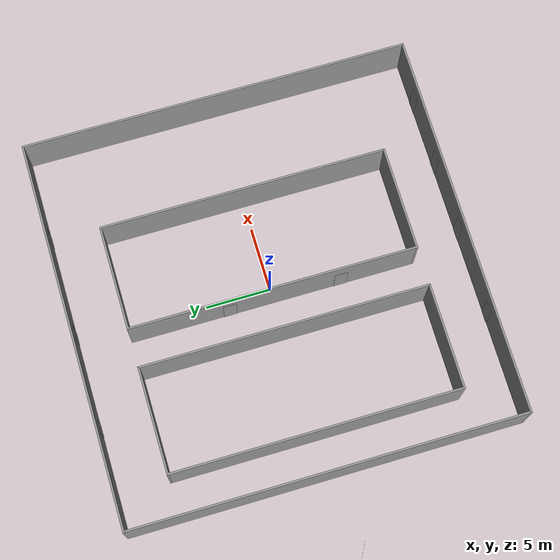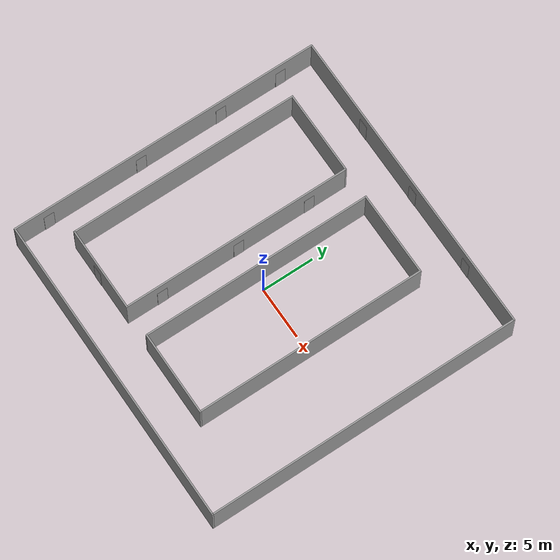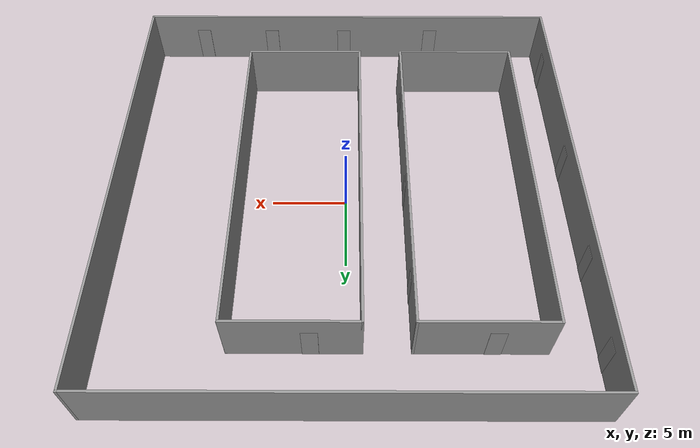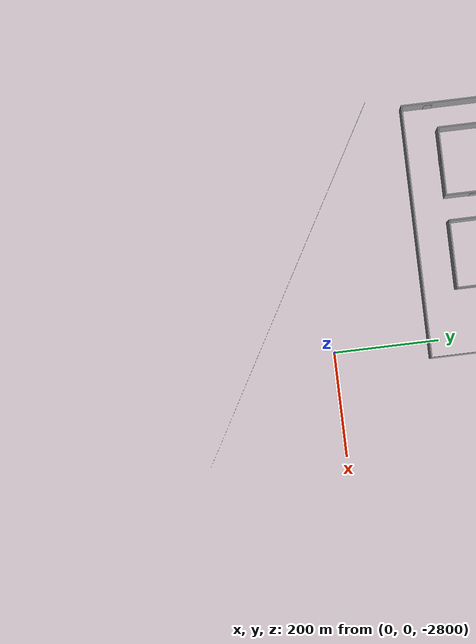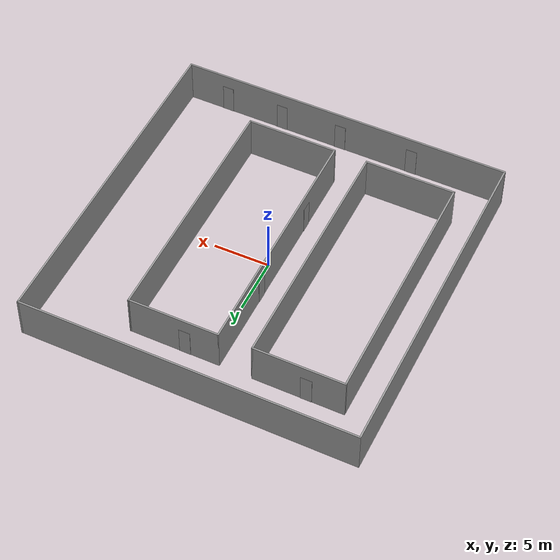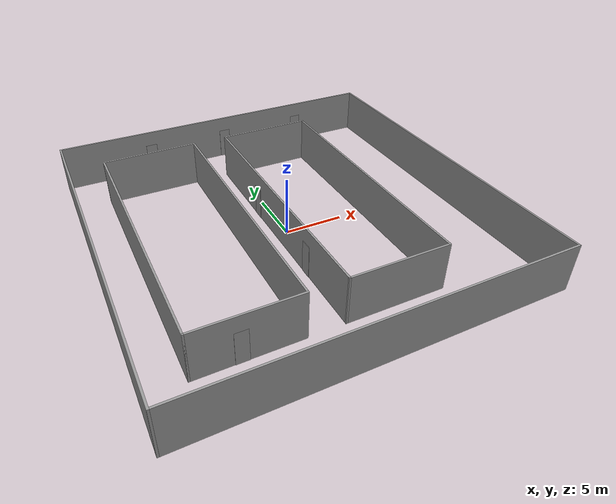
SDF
<sdf version="1.7">
 <world name="default">
  <model name="ground_plane">
   <static>1</static>
   <link name="link">
    <collision name="collision">
     <geometry><plane><normal>0 0 1</normal><size>30 30</size></plane></geometry>
     <surface>
      <contact><collide_bitmask>65535</collide_bitmask></contact>
      <friction><ode><mu>100</mu><mu2>50</mu2></ode></friction>
     </surface>
    </collision>
    <visual name="visual">
     <cast_shadows>0</cast_shadows>
     <geometry><plane><normal>0 0 1</normal><size>30 30</size></plane></geometry>
     <material>
      <script><uri>file://media/materials/scripts/gazebo.material</uri><name>Gazebo/White</name></script>
      <ambient>1 1 1 1</ambient>
      <diffuse>1 1 1 1</diffuse>
      <emissive>1 1 1 1</emissive>
     </material>
    </visual>
   </link>
  </model>
  <gravity>0 0 -9.8</gravity>
  <magnetic_field>6e-06 2.3e-05 -4.2e-05</magnetic_field>
  <atmosphere type="adiabatic"/>
  <physics type="ode">
   <max_step_size>0.001</max_step_size>
   <real_time_factor>1</real_time_factor>
   <real_time_update_rate>1000</real_time_update_rate>
  </physics>
  <scene>
   <ambient>0.6 0.6 0.6 1</ambient>
   <background>0.7 0.7 0.7 1</background>
   <shadows>0</shadows>
   <grid>0</grid>
  </scene>
  <spherical_coordinates>
   <surface_model>EARTH_WGS84</surface_model>
   <latitude_deg>0</latitude_deg>
   <longitude_deg>0</longitude_deg>
   <elevation>0</elevation>
   <heading_deg>0</heading_deg>
  </spherical_coordinates>
  <model name="hospital_wall">
   <link name="Wall_10">
    <collision name="Wall_10_Collision">
     <geometry><box><size>30.15 0.15 4</size></box></geometry>
     <pose>0 0 2 0 -0 0</pose>
    </collision>
    <visual name="Wall_10_Visual">
     <pose>0 0 2 0 -0 0</pose>
     <geometry><box><size>30.15 0.15 4</size></box></geometry>
     <material>
      <script><uri>file://media/materials/scripts/gazebo.material</uri><name>Gazebo/Grey</name></script>
      <ambient>1 1 1 1</ambient>
     </material>
     <meta><layer>0</layer></meta>
    </visual>
    <pose>-14.9625 0 0 0 -0 1.5708</pose>
   </link>
   <link name="Wall_12">
    <collision name="Wall_12_Collision">
     <geometry><box><size>22.15 0.15 4</size></box></geometry>
     <pose>0 0 2 0 -0 0</pose>
    </collision>
    <visual name="Wall_12_Visual">
     <pose>0 0 2 0 -0 0</pose>
     <geometry><box><size>22.15 0.15 4</size></box></geometry>
     <material>
      <script><uri>file://media/materials/scripts/gazebo.material</uri><name>Gazebo/Grey</name></script>
      <ambient>1 1 1 1</ambient>
     </material>
     <meta><layer>0</layer></meta>
    </visual>
    <pose>7.0375 0 0 0 -0 -1.5708</pose>
   </link>
   <link name="Wall_13">
    <collision name="Wall_13_Collision">
     <geometry><box><size>8.15 0.15 4</size></box></geometry>
     <pose>0 0 2 0 -0 0</pose>
    </collision>
    <visual name="Wall_13_Visual">
     <pose>0 0 2 0 -0 0</pose>
     <geometry><box><size>8.15 0.15 4</size></box></geometry>
     <material>
      <script><uri>file://media/materials/scripts/gazebo.material</uri><name>Gazebo/Grey</name></script>
      <ambient>1 1 1 1</ambient>
     </material>
     <meta><layer>0</layer></meta>
    </visual>
    <pose>3.0375 -11 0 0 -0 3.14159</pose>
   </link>
   <link name="Wall_14">
    <collision name="Wall_14_Collision">
     <geometry><box><size>22.15 0.15 4</size></box></geometry>
     <pose>0 0 2 0 -0 0</pose>
    </collision>
    <visual name="Wall_14_Visual">
     <pose>0 0 2 0 -0 0</pose>
     <geometry><box><size>22.15 0.15 4</size></box></geometry>
     <material>
      <script><uri>file://media/materials/scripts/gazebo.material</uri><name>Gazebo/Grey</name></script>
      <ambient>1 1 1 1</ambient>
     </material>
     <meta><layer>0</layer></meta>
    </visual>
    <pose>-0.962499 0 0 0 -0 1.5708</pose>
   </link>
   <link name="Wall_15">
    <collision name="Wall_15_Collision">
     <geometry><box><size>8.15 0.15 4</size></box></geometry>
     <pose>0 0 2 0 -0 0</pose>
    </collision>
    <visual name="Wall_15_Visual">
     <pose>0 0 2 0 -0 0</pose>
     <geometry><box><size>8.15 0.15 4</size></box></geometry>
     <material>
      <script><uri>file://media/materials/scripts/gazebo.material</uri><name>Gazebo/Grey</name></script>
      <ambient>1 1 1 1</ambient>
     </material>
     <meta><layer>0</layer></meta>
    </visual>
    <pose>3.0375 11 0 0 -0 0</pose>
   </link>
   <link name="Wall_17">
    <collision name="Wall_17_Collision">
     <geometry><box><size>22.15 0.15 4</size></box></geometry>
     <pose>0 0 2 0 -0 0</pose>
    </collision>
    <visual name="Wall_17_Visual">
     <pose>0 0 2 0 -0 0</pose>
     <geometry><box><size>22.15 0.15 4</size></box></geometry>
     <material>
      <script><uri>file://media/materials/scripts/gazebo.material</uri><name>Gazebo/Grey</name></script>
      <ambient>1 1 1 1</ambient>
     </material>
     <meta><layer>0</layer></meta>
    </visual>
    <pose>-11.9625 0 0 0 -0 -1.5708</pose>
   </link>
   <link name="Wall_18">
    <collision name="Wall_18_Collision">
     <geometry><box><size>8.15 0.15 4</size></box></geometry>
     <pose>0 0 2 0 -0 0</pose>
    </collision>
    <visual name="Wall_18_Visual">
     <pose>0 0 2 0 -0 0</pose>
     <geometry><box><size>8.15 0.15 4</size></box></geometry>
     <material>
      <script><uri>file://media/materials/scripts/gazebo.material</uri><name>Gazebo/Grey</name></script>
      <ambient>1 1 1 1</ambient>
     </material>
     <meta><layer>0</layer></meta>
    </visual>
    <pose>-7.9625 -11 0 0 -0 0</pose>
   </link>
   <link name="Wall_19">
    <collision name="Wall_19_Collision">
     <geometry><box><size>22.15 0.15 4</size></box></geometry>
     <pose>0 0 2 0 -0 0</pose>
    </collision>
    <visual name="Wall_19_Visual">
     <pose>0 0 2 0 -0 0</pose>
     <geometry><box><size>22.15 0.15 4</size></box></geometry>
     <material>
      <script><uri>file://media/materials/scripts/gazebo.material</uri><name>Gazebo/Grey</name></script>
      <ambient>1 1 1 1</ambient>
     </material>
     <meta><layer>0</layer></meta>
    </visual>
    <pose>-3.9625 0 0 0 -0 1.5708</pose>
   </link>
   <link name="Wall_2">
    <collision name="Wall_2_Collision">
     <geometry><box><size>30 0.15 4</size></box></geometry>
     <pose>0 0 2 0 -0 0</pose>
    </collision>
    <visual name="Wall_2_Visual">
     <pose>0 0 2 0 -0 0</pose>
     <geometry><box><size>30 0.15 4</size></box></geometry>
     <material>
      <script><uri>file://media/materials/scripts/gazebo.material</uri><name>Gazebo/Grey</name></script>
      <ambient>1 1 1 1</ambient>
     </material>
     <meta><layer>0</layer></meta>
    </visual>
    <pose>-0.037498 15 0 0 -0 3.14159</pose>
   </link>
   <link name="Wall_20">
    <collision name="Wall_20_Collision">
     <geometry><box><size>8.15 0.15 4</size></box></geometry>
     <pose>0 0 2 0 -0 0</pose>
    </collision>
    <visual name="Wall_20_Visual">
     <pose>0 0 2 0 -0 0</pose>
     <geometry><box><size>8.15 0.15 4</size></box></geometry>
     <material>
      <script><uri>file://media/materials/scripts/gazebo.material</uri><name>Gazebo/Grey</name></script>
      <ambient>1 1 1 1</ambient>
     </material>
     <meta><layer>0</layer></meta>
    </visual>
    <pose>-7.9625 11 0 0 -0 3.14159</pose>
   </link>
   <link name="Wall_8">
    <collision name="Wall_8_Collision">
     <geometry><box><size>30.15 0.15 4</size></box></geometry>
     <pose>0 0 2 0 -0 0</pose>
    </collision>
    <visual name="Wall_8_Visual">
     <pose>0 0 2 0 -0 0</pose>
     <geometry><box><size>30.15 0.15 4</size></box></geometry>
     <material>
      <script><uri>file://media/materials/scripts/gazebo.material</uri><name>Gazebo/Grey</name></script>
      <ambient>1 1 1 1</ambient>
     </material>
     <meta><layer>0</layer></meta>
    </visual>
    <pose>14.8875 0 0 0 -0 -1.5708</pose>
   </link>
   <link name="Wall_9">
    <collision name="Wall_9_Collision">
     <geometry><box><size>30 0.15 4</size></box></geometry>
     <pose>0 0 2 0 -0 0</pose>
    </collision>
    <visual name="Wall_9_Visual">
     <pose>0 0 2 0 -0 0</pose>
     <geometry><box><size>30 0.15 4</size></box></geometry>
     <material>
      <script><uri>file://media/materials/scripts/gazebo.material</uri><name>Gazebo/Grey</name></script>
      <ambient>1 1 1 1</ambient>
     </material>
     <meta><layer>0</layer></meta>
    </visual>
    <pose>-0.037498 -15 0 0 -0 3.14159</pose>
   </link>
   <static>1</static>
  </model>
  <model name="unit_box">
   <pose>-2.42343 -116.201 -2021.87 1.14266 1.29147 -0.652797</pose>
   <link name="link">
    <inertial>
     <mass>1</mass>
     <inertia>
      <ixx>0.166667</ixx>
      <ixy>0</ixy>
      <ixz>0</ixz>
      <iyy>0.166667</iyy>
      <iyz>0</iyz>
      <izz>0.166667</izz>
     </inertia>
    </inertial>
    <collision name="collision">
     <geometry><box><size>1816.64 0.0150161 0.185075</size></box></geometry>
    </collision>
    <visual name="visual">
     <geometry><box><size>1816.64 0.0150161 0.185075</size></box></geometry>
     <material>
      <script><name>Gazebo/Grey</name><uri>file://media/materials/scripts/gazebo.material</uri></script>
     </material>
    </visual>
   </link>
  </model>
  <model name="unit_box_0_clone">
   <pose>-8.47209 -11.0876 1.36135 -4e-06 2e-06 -1e-06</pose>
   <link name="link">
    <inertial>
     <mass>1</mass>
     <inertia>
      <ixx>0.166667</ixx>
      <ixy>0</ixy>
      <ixz>0</ixz>
      <iyy>0.166667</iyy>
      <iyz>0</iyz>
      <izz>0.166667</izz>
     </inertia>
    </inertial>
    <collision name="collision"><geometry><box><size>1 0.025101 2.7227</size></box></geometry></collision>
    <visual name="visual">
     <geometry><box><size>1 0.025101 2.7227</size></box></geometry>
     <material>
      <script><name>Gazebo/Grey</name><uri>file://media/materials/scripts/gazebo.material</uri></script>
     </material>
    </visual>
   </link>
  </model>
  <model name="unit_box_0_clone_0">
   <pose>11.1775 -14.9125 1.36135 -0 -1e-06 -3e-06</pose>
   <link name="link">
    <inertial>
     <mass>1</mass>
     <inertia>
      <ixx>0.166667</ixx>
      <ixy>0</ixy>
      <ixz>0</ixz>
      <iyy>0.166667</iyy>
      <iyz>0</iyz>
      <izz>0.166667</izz>
     </inertia>
    </inertial>
    <collision name="collision"><geometry><box><size>1 0.025101 2.7227</size></box></geometry></collision>
    <visual name="visual">
     <geometry><box><size>1 0.025101 2.7227</size></box></geometry>
     <material>
      <script><name>Gazebo/Grey</name><uri>file://media/materials/scripts/gazebo.material</uri></script>
     </material>
    </visual>
   </link>
  </model>
  <model name="unit_box_0_clone_1">
   <pose>5.85953 -14.9125 1.36135 0 1e-06 -3e-06</pose>
   <link name="link">
    <inertial>
     <mass>1</mass>
     <inertia>
      <ixx>0.166667</ixx>
      <ixy>0</ixy>
      <ixz>0</ixz>
      <iyy>0.166667</iyy>
      <iyz>0</iyz>
      <izz>0.166667</izz>
     </inertia>
    </inertial>
    <collision name="collision"><geometry><box><size>1 0.025101 2.7227</size></box></geometry></collision>
    <visual name="visual">
     <geometry><box><size>1 0.025101 2.7227</size></box></geometry>
     <material>
      <script><name>Gazebo/Grey</name><uri>file://media/materials/scripts/gazebo.material</uri></script>
     </material>
    </visual>
   </link>
  </model>
  <model name="unit_box_0_clone_2">
   <pose>0.225423 -14.9124 1.36135 8e-06 1e-06 -3e-06</pose>
   <link name="link">
    <inertial>
     <mass>1</mass>
     <inertia>
      <ixx>0.166667</ixx>
      <ixy>0</ixy>
      <ixz>0</ixz>
      <iyy>0.166667</iyy>
      <iyz>0</iyz>
      <izz>0.166667</izz>
     </inertia>
    </inertial>
    <collision name="collision"><geometry><box><size>1 0.025101 2.7227</size></box></geometry></collision>
    <visual name="visual">
     <geometry><box><size>1 0.025101 2.7227</size></box></geometry>
     <material>
      <script><name>Gazebo/Grey</name><uri>file://media/materials/scripts/gazebo.material</uri></script>
     </material>
    </visual>
   </link>
  </model>
  <model name="unit_box_0_clone_3">
   <pose>-6.52828 -14.9124 1.36135 -2e-06 1e-06 -9e-06</pose>
   <link name="link">
    <inertial>
     <mass>1</mass>
     <inertia>
      <ixx>0.166667</ixx>
      <ixy>0</ixy>
      <ixz>0</ixz>
      <iyy>0.166667</iyy>
      <iyz>0</iyz>
      <izz>0.166667</izz>
     </inertia>
    </inertial>
    <collision name="collision"><geometry><box><size>1 0.025101 2.7227</size></box></geometry></collision>
    <visual name="visual">
     <geometry><box><size>1 0.025101 2.7227</size></box></geometry>
     <material>
      <script><name>Gazebo/Grey</name><uri>file://media/materials/scripts/gazebo.material</uri></script>
     </material>
    </visual>
   </link>
  </model>
  <model name="unit_box_0_clone_4">
   <pose>2.05561 11.0876 1.36135 1e-06 -1e-06 -1e-06</pose>
   <link name="link">
    <inertial>
     <mass>1</mass>
     <inertia>
      <ixx>0.166667</ixx>
      <ixy>0</ixy>
      <ixz>0</ixz>
      <iyy>0.166667</iyy>
      <iyz>0</iyz>
      <izz>0.166667</izz>
     </inertia>
    </inertial>
    <collision name="collision"><geometry><box><size>1 0.025101 2.7227</size></box></geometry></collision>
    <visual name="visual">
     <geometry><box><size>1 0.025101 2.7227</size></box></geometry>
     <material>
      <script><name>Gazebo/Grey</name><uri>file://media/materials/scripts/gazebo.material</uri></script>
     </material>
    </visual>
   </link>
  </model>
  <model name="unit_box_0_clone_5">
   <pose>-8.66704 11.0876 1.36135 -4e-06 -1e-06 -3e-06</pose>
   <link name="link">
    <inertial>
     <mass>1</mass>
     <inertia>
      <ixx>0.166667</ixx>
      <ixy>0</ixy>
      <ixz>0</ixz>
      <iyy>0.166667</iyy>
      <iyz>0</iyz>
      <izz>0.166667</izz>
     </inertia>
    </inertial>
    <collision name="collision"><geometry><box><size>1 0.025101 2.7227</size></box></geometry></collision>
    <visual name="visual">
     <geometry><box><size>1 0.025101 2.7227</size></box></geometry>
     <material>
      <script><name>Gazebo/Grey</name><uri>file://media/materials/scripts/gazebo.material</uri></script>
     </material>
    </visual>
   </link>
  </model>
  <model name="unit_box_0_clone_6">
   <pose>8.16667 14.9124 1.36135 7e-06 -1e-06 -4e-06</pose>
   <link name="link">
    <inertial>
     <mass>1</mass>
     <inertia>
      <ixx>0.166667</ixx>
      <ixy>0</ixy>
      <ixz>0</ixz>
      <iyy>0.166667</iyy>
      <iyz>0</iyz>
      <izz>0.166667</izz>
     </inertia>
    </inertial>
    <collision name="collision"><geometry><box><size>1 0.025101 2.7227</size></box></geometry></collision>
    <visual name="visual">
     <geometry><box><size>1 0.025101 2.7227</size></box></geometry>
     <material>
      <script><name>Gazebo/Grey</name><uri>file://media/materials/scripts/gazebo.material</uri></script>
     </material>
    </visual>
   </link>
  </model>
  <model name="unit_box_0_clone_7">
   <pose>0.367251 14.9124 1.36135 3e-06 1e-06 -4e-06</pose>
   <link name="link">
    <inertial>
     <mass>1</mass>
     <inertia>
      <ixx>0.166667</ixx>
      <ixy>0</ixy>
      <ixz>0</ixz>
      <iyy>0.166667</iyy>
      <iyz>0</iyz>
      <izz>0.166667</izz>
     </inertia>
    </inertial>
    <collision name="collision"><geometry><box><size>1 0.025101 2.7227</size></box></geometry></collision>
    <visual name="visual">
     <geometry><box><size>1 0.025101 2.7227</size></box></geometry>
     <material>
      <script><name>Gazebo/Grey</name><uri>file://media/materials/scripts/gazebo.material</uri></script>
     </material>
    </visual>
   </link>
  </model>
  <model name="unit_box_0_clone_8">
   <pose>-6.98883 14.9125 1.36135 0 1e-06 -3e-06</pose>
   <link name="link">
    <inertial>
     <mass>1</mass>
     <inertia>
      <ixx>0.166667</ixx>
      <ixy>0</ixy>
      <ixz>0</ixz>
      <iyy>0.166667</iyy>
      <iyz>0</iyz>
      <izz>0.166667</izz>
     </inertia>
    </inertial>
    <collision name="collision"><geometry><box><size>1 0.025101 2.7227</size></box></geometry></collision>
    <visual name="visual">
     <geometry><box><size>1 0.025101 2.7227</size></box></geometry>
     <material>
      <script><name>Gazebo/Grey</name><uri>file://media/materials/scripts/gazebo.material</uri></script>
     </material>
    </visual>
   </link>
  </model>
  <model name="unit_box_0_clone_9">
   <pose>-1.05006 3.3829 1.36135 0 -1e-06 1.5708</pose>
   <link name="link">
    <inertial>
     <mass>1</mass>
     <inertia>
      <ixx>0.166667</ixx>
      <ixy>0</ixy>
      <ixz>0</ixz>
      <iyy>0.166667</iyy>
      <iyz>0</iyz>
      <izz>0.166667</izz>
     </inertia>
    </inertial>
    <collision name="collision"><geometry><box><size>1 0.025101 2.7227</size></box></geometry></collision>
    <visual name="visual">
     <geometry><box><size>1 0.025101 2.7227</size></box></geometry>
     <material>
      <script><name>Gazebo/Grey</name><uri>file://media/materials/scripts/gazebo.material</uri></script>
     </material>
    </visual>
   </link>
  </model>
  <model name="unit_box_0_clone_9_clone">
   <pose>-1.05003 -5.22515 1.36135 0 1e-06 1.5708</pose>
   <link name="link">
    <inertial>
     <mass>1</mass>
     <inertia>
      <ixx>0.166667</ixx>
      <ixy>0</ixy>
      <ixz>0</ixz>
      <iyy>0.166667</iyy>
      <iyz>0</iyz>
      <izz>0.166667</izz>
     </inertia>
    </inertial>
    <collision name="collision"><geometry><box><size>1 0.025101 2.7227</size></box></geometry></collision>
    <visual name="visual">
     <geometry><box><size>1 0.025101 2.7227</size></box></geometry>
     <material>
      <script><name>Gazebo/Grey</name><uri>file://media/materials/scripts/gazebo.material</uri></script>
     </material>
    </visual>
   </link>
  </model>
  <model name="unit_box_0_clone_9_clone_0">
   <pose>-3.87414 7.25767 1.36135 -5e-06 -1e-06 1.5708</pose>
   <link name="link">
    <inertial>
     <mass>1</mass>
     <inertia>
      <ixx>0.166667</ixx>
      <ixy>0</ixy>
      <ixz>0</ixz>
      <iyy>0.166667</iyy>
      <iyz>0</iyz>
      <izz>0.166667</izz>
     </inertia>
    </inertial>
    <collision name="collision"><geometry><box><size>1 0.025101 2.7227</size></box></geometry></collision>
    <visual name="visual">
     <geometry><box><size>1 0.025101 2.7227</size></box></geometry>
     <material>
      <script><name>Gazebo/Grey</name><uri>file://media/materials/scripts/gazebo.material</uri></script>
     </material>
    </visual>
   </link>
  </model>
  <model name="unit_box_0_clone_9_clone_1">
   <pose>-3.87495 0.089633 1.36135 0 2e-06 1.5708</pose>
   <link name="link">
    <inertial>
     <mass>1</mass>
     <inertia>
      <ixx>0.166667</ixx>
      <ixy>0</ixy>
      <ixz>0</ixz>
      <iyy>0.166667</iyy>
      <iyz>0</iyz>
      <izz>0.166667</izz>
     </inertia>
    </inertial>
    <collision name="collision"><geometry><box><size>1 0.025101 2.7227</size></box></geometry></collision>
    <visual name="visual">
     <geometry><box><size>1 0.025101 2.7227</size></box></geometry>
     <material>
      <script><name>Gazebo/Grey</name><uri>file://media/materials/scripts/gazebo.material</uri></script>
     </material>
    </visual>
   </link>
  </model>
  <model name="unit_box_0_clone_9_clone_2">
   <pose>-3.87492 -7.58474 1.36135 0 2e-06 1.5708</pose>
   <link name="link">
    <inertial>
     <mass>1</mass>
     <inertia>
      <ixx>0.166667</ixx>
      <ixy>0</ixy>
      <ixz>0</ixz>
      <iyy>0.166667</iyy>
      <iyz>0</iyz>
      <izz>0.166667</izz>
     </inertia>
    </inertial>
    <collision name="collision"><geometry><box><size>1 0.025101 2.7227</size></box></geometry></collision>
    <visual name="visual">
     <geometry><box><size>1 0.025101 2.7227</size></box></geometry>
     <material>
      <script><name>Gazebo/Grey</name><uri>file://media/materials/scripts/gazebo.material</uri></script>
     </material>
    </visual>
   </link>
  </model>
  <model name="unit_box_0_clone_9_clone_3">
   <pose>-14.875 11.7461 1.36135 0 2e-06 1.5708</pose>
   <link name="link">
    <inertial>
     <mass>1</mass>
     <inertia>
      <ixx>0.166667</ixx>
      <ixy>0</ixy>
      <ixz>0</ixz>
      <iyy>0.166667</iyy>
      <iyz>0</iyz>
      <izz>0.166667</izz>
     </inertia>
    </inertial>
    <collision name="collision"><geometry><box><size>1 0.025101 2.7227</size></box></geometry></collision>
    <visual name="visual">
     <geometry><box><size>1 0.025101 2.7227</size></box></geometry>
     <material>
      <script><name>Gazebo/Grey</name><uri>file://media/materials/scripts/gazebo.material</uri></script>
     </material>
    </visual>
   </link>
  </model>
  <model name="unit_box_0_clone_9_clone_4">
   <pose>-14.875 5.62064 1.36135 0 -1e-06 1.5708</pose>
   <link name="link">
    <inertial>
     <mass>1</mass>
     <inertia>
      <ixx>0.166667</ixx>
      <ixy>0</ixy>
      <ixz>0</ixz>
      <iyy>0.166667</iyy>
      <iyz>0</iyz>
      <izz>0.166667</izz>
     </inertia>
    </inertial>
    <collision name="collision"><geometry><box><size>1 0.025101 2.7227</size></box></geometry></collision>
    <visual name="visual">
     <geometry><box><size>1 0.025101 2.7227</size></box></geometry>
     <material>
      <script><name>Gazebo/Grey</name><uri>file://media/materials/scripts/gazebo.material</uri></script>
     </material>
    </visual>
   </link>
  </model>
  <model name="unit_box_0_clone_9_clone_5">
   <pose>-14.8741 -2.50469 1.36135 -1.5e-05 -1e-06 1.57103</pose>
   <link name="link">
    <inertial>
     <mass>1</mass>
     <inertia>
      <ixx>0.166667</ixx>
      <ixy>0</ixy>
      <ixz>0</ixz>
      <iyy>0.166667</iyy>
      <iyz>0</iyz>
      <izz>0.166667</izz>
     </inertia>
    </inertial>
    <collision name="collision"><geometry><box><size>1 0.025101 2.7227</size></box></geometry></collision>
    <visual name="visual">
     <geometry><box><size>1 0.025101 2.7227</size></box></geometry>
     <material>
      <script><name>Gazebo/Grey</name><uri>file://media/materials/scripts/gazebo.material</uri></script>
     </material>
    </visual>
   </link>
  </model>
  <model name="unit_box_0_clone_9_clone_6">
   <pose>-14.8676 -11.7882 1.36135 5e-06 -1e-06 1.5708</pose>
   <link name="link">
    <inertial>
     <mass>1</mass>
     <inertia>
      <ixx>0.166667</ixx>
      <ixy>0</ixy>
      <ixz>0</ixz>
      <iyy>0.166667</iyy>
      <iyz>0</iyz>
      <izz>0.166667</izz>
     </inertia>
    </inertial>
    <collision name="collision"><geometry><box><size>1 0.025101 2.7227</size></box></geometry></collision>
    <visual name="visual">
     <geometry><box><size>1 0.025101 2.7227</size></box></geometry>
     <material>
      <script><name>Gazebo/Grey</name><uri>file://media/materials/scripts/gazebo.material</uri></script>
     </material>
    </visual>
   </link>
  </model>
 </world>
</sdf>
